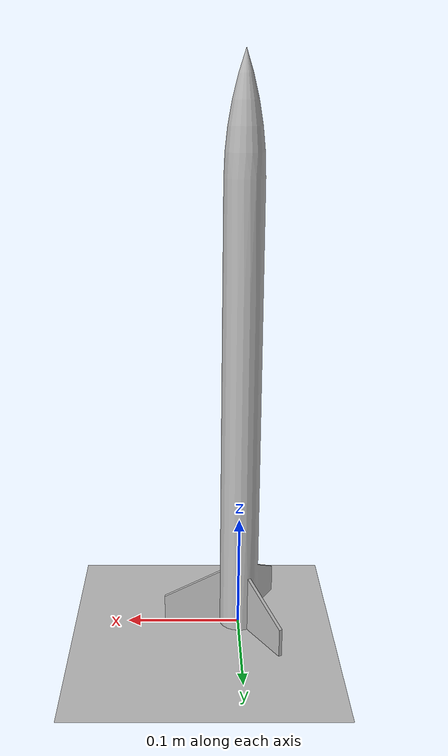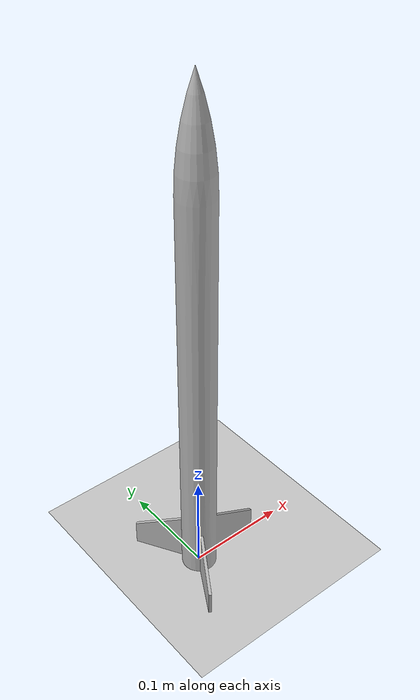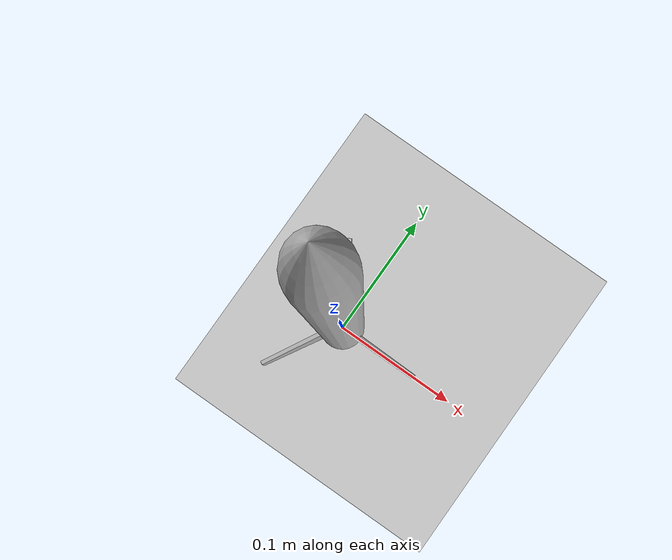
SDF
<?xml version="1.0"?>
<sdf version="1.4">
  <world name="default">
    <include>
      <uri>model://ground_plane</uri>
    </include>
    <include>
      <uri>model://sun</uri>
    </include>
    <model name="RocketMesh">
      <pose>0 0 0  1.5708 0 0</pose>
      <static>true</static>
      <link name="body">
        <visual name="visual">
          <geometry>
            <mesh><uri>file://Example.stl</uri>
              <scale>0.001 0.001 0.001</scale>
            </mesh>
          </geometry>
        </visual>
      </link>
    </model>
  </world>
</sdf>
